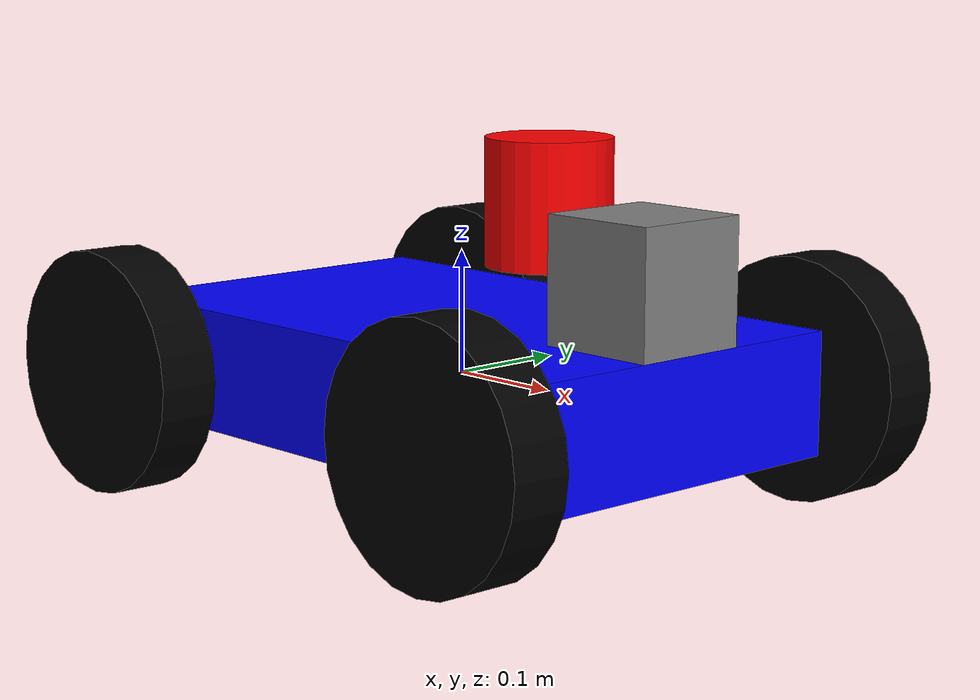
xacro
<?xml version="1.0"?>
<robot xmlns:xacro="http://www.ros.org/wiki/xacro" name="simple_robot">

  <!-- Base Link -->
  <link name="base_link">
    <visual>
      <geometry>
        <box size="0.5 0.3 0.1"/>
      </geometry>
      <material name="blue">
        <color rgba="0 0 1 1"/>
      </material>
    </visual>
    <collision>
      <geometry>
        <box size="0.5 0.3 0.1"/>
      </geometry>
    </collision>
    <inertial>
      <mass value="5.0"/>
      <origin xyz="0 0 0" rpy="0 0 0"/>
      <inertia ixx="0.1" ixy="0.0" ixz="0.0" iyy="0.1" iyz="0.0" izz="0.1"/>
    </inertial>
  </link>

  <!-- Wheels -->
  <xacro:macro name="wheel" params="name x y z">
    <link name="${name}">
      <visual>
        <geometry>
          <cylinder length="0.05" radius="0.1"/>
        </geometry>
        <origin rpy="1.5708 0 0"/>
        <material name="black">
          <color rgba="0 0 0 1"/>
        </material>
      </visual>
      <collision>
        <geometry>
          <cylinder length="0.05" radius="0.1"/>
        </geometry>
        <origin rpy="1.5708 0 0"/>
      </collision>
      <inertial>
        <mass value="1.0"/>
        <origin xyz="0 0 0" rpy="0 0 0"/>
        <inertia ixx="0.01" ixy="0.0" ixz="0.0" iyy="0.01" iyz="0.0" izz="0.01"/>
      </inertial>
    </link>
    <joint name="${name}_joint" type="continuous">
      <parent link="base_link"/>
      <child link="${name}"/>
      <origin xyz="${x} ${y} ${z}" rpy="0 0 0"/>
      <axis xyz="0 1 0"/>
    </joint>
  </xacro:macro>

  <xacro:wheel name="front_left_wheel" x="0.2" y="0.2" z="0.0"/>
  <xacro:wheel name="front_right_wheel" x="0.2" y="-0.2" z="0.0"/>
  <xacro:wheel name="rear_right_wheel" x="-0.2" y="-0.2" z="0.0"/>

  <!-- REAR LEFT WHEEL (ЯВНО) -->
  <link name="rear_left_wheel">
    <visual>
      <geometry>
        <cylinder length="0.05" radius="0.1"/>
      </geometry>
      <origin rpy="1.5708 0 0"/>
      <material name="black">
        <color rgba="0 0 0 1"/>
      </material>
    </visual>
    <collision>
      <geometry>
        <cylinder length="0.05" radius="0.1"/>
      </geometry>
      <origin rpy="1.5708 0 0"/>
    </collision>
    <inertial>
      <mass value="1.0"/>
      <origin xyz="0 0 0" rpy="0 0 0"/>
      <inertia ixx="0.01" ixy="0.0" ixz="0.0" iyy="0.01" iyz="0.0" izz="0.01"/>
    </inertial>
  </link>

  <joint name="rear_left_wheel_joint" type="continuous">
    <parent link="base_link"/>
    <child link="rear_left_wheel"/>
    <origin xyz="-0.2 0.2 0.0" rpy="0 0 0"/>
    <axis xyz="0 -1 0"/>
  </joint>

  <!-- Camera -->
  <link name="camera_link">
     <visual>
       <geometry>
         <box size="0.1 0.1 0.1"/>
       </geometry>
       <material name="gray">
         <color rgba="0.5 0.5 0.5 1"/>
       </material>
     </visual>
   </link>
   <joint name="camera_joint" type="fixed">
     <parent link="base_link"/>
     <child link="camera_link"/>
     <origin xyz="0.2 0 0.1" rpy="0 0 0"/>
   </joint>
   <gazebo reference="camera_link">
     <sensor type="camera" name="camera_sensor">

     <always_on>true</always_on>
     <visualize>true</visualize>
     <update_rate>30.0</update_rate>
     <camera>
       <horizontal_fov>1.3962634</horizontal_fov>
       <image>
         <width>640</width>
         <height>480</height>
         <format>R8G8B8</format>
       </image>
       <clip>
         <near>0.1</near>
         <far>100.0</far>
       </clip>
     </camera>
     <plugin name="gazebo_ros_camera" filename="libgazebo_ros_camera.so">
       <robotNamespace>/</robotNamespace>
       <cameraName>camera</cameraName>
       <imageTopicName>camera/image_raw</imageTopicName>
       <cameraInfoTopicName>camera/camera_info</cameraInfoTopicName>
       <frameName>camera_link</frameName>
       <qos_camera>best_effort</qos_camera>
     </plugin>
   </sensor>
   </gazebo>

  <!-- Lidar -->
  <link name="lidar_link">
    <visual>
      <geometry>
        <cylinder length="0.1" radius="0.05"/>
      </geometry>
      <material name="red">
        <color rgba="1 0 0 1"/>
      </material>
    </visual>
  </link>
  <joint name="lidar_joint" type="fixed">
    <parent link="base_link"/>
    <child link="lidar_link"/>
    <origin xyz="0.1 0 0.15" rpy="0 0 0"/>
  </joint>
  <gazebo reference="lidar_link">
    <sensor name="lidar_sensor" type="ray">
      <ray>
        <scan>
          <horizontal>
            <samples>720</samples>
            <resolution>1</resolution>
            <min_angle>-1.57</min_angle>
            <max_angle>1.57</max_angle>
          </horizontal>
        </scan>
        <range>
          <min>0.1</min>
          <max>10.0</max>
          <resolution>0.01</resolution>
        </range>
      </ray>
      <always_on>true</always_on>
      <update_rate>30</update_rate>
      <visualize>true</visualize>
    </sensor>
    <plugin name="gazebo_ros_ray_sensor" filename="libgazebo_ros_ray_sensor.so">
      <ros>
        <namespace>/</namespace>
        <remapping>scan:=scan</remapping>
      </ros>
      <frame_name>lidar_link</frame_name>
    </plugin>
  </gazebo>

  <gazebo reference="front_left_wheel">
    <mu1>0.0</mu1>
    <mu2>0.0</mu2>
    <dampingFactor>0.0</dampingFactor>
    <fdir1>0 0 0</fdir1>
    <gravity>false</gravity>
  </gazebo>

  <gazebo reference="front_right_wheel">
    <mu1>0.0</mu1>
    <mu2>0.0</mu2>
    <dampingFactor>0.0</dampingFactor>
    <fdir1>0 0 0</fdir1>
    <gravity>false</gravity>
  </gazebo>

  <!-- Diff Drive Plugin -->
  <gazebo>
    <plugin name="diff_drive_controller" filename="libgazebo_ros_diff_drive.so">
      <ros>
        <namespace>/</namespace>
        <remapping>cmd_vel:=/cmd_vel</remapping>
        <remapping>odom:=/odom</remapping>
      </ros>
      <update_rate>30</update_rate>
      <left_joint>rear_left_wheel_joint</left_joint>
      <right_joint>rear_right_wheel_joint</right_joint>
      <wheel_separation>0.4</wheel_separation>
      <wheel_diameter>0.2</wheel_diameter>
      <publish_odom>true</publish_odom>
      <odometry_frame>odom</odometry_frame>
      <robot_base_frame>base_link</robot_base_frame>
    </plugin>
  </gazebo>

</robot>
